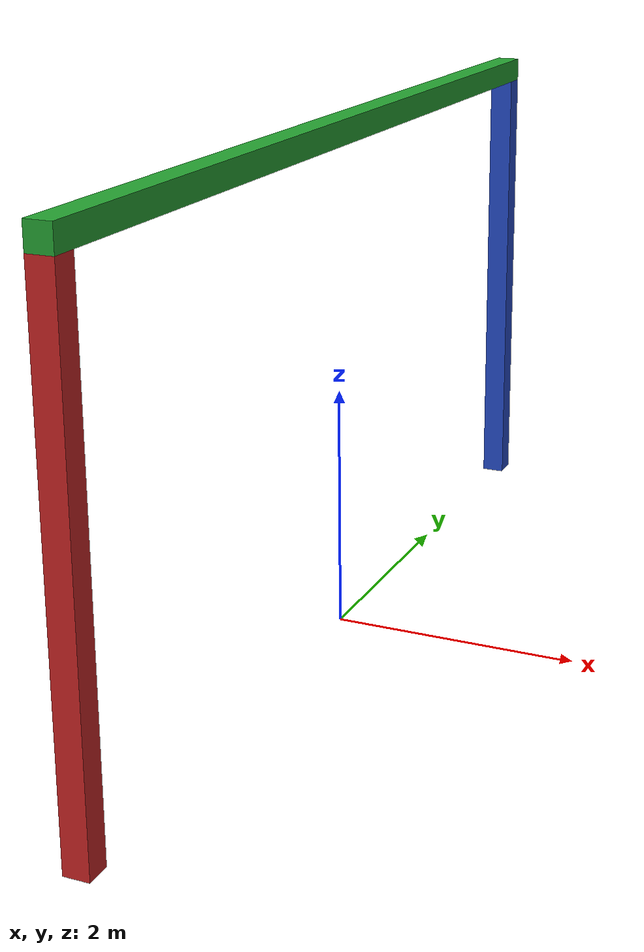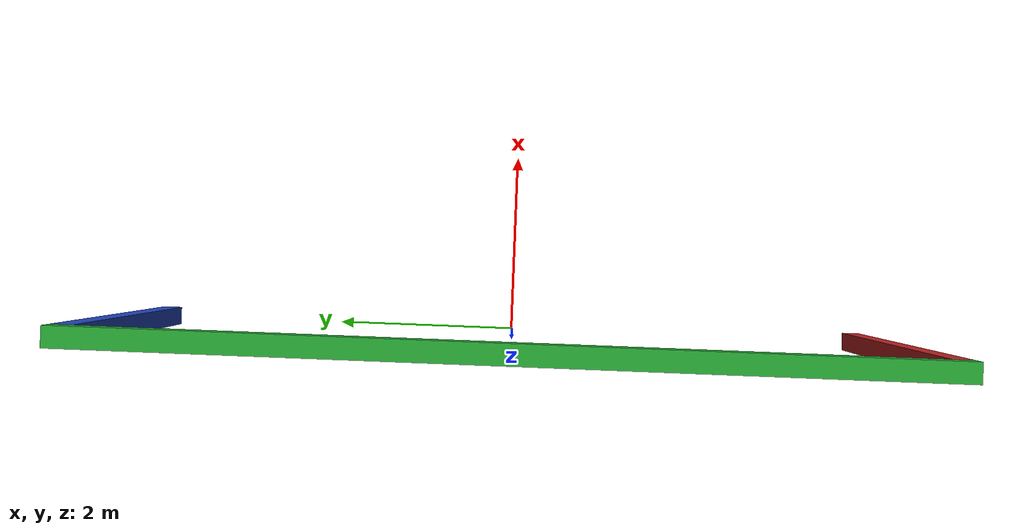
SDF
<?xml version="1.0"?>
<sdf version="1.4">
  <model name="vehicle_gate">
    <static>true</static>
    <pose>0 0 2.0 0 0 0</pose>
    <link name="link">
      <collision name="right_collision">
        <pose>0 -4.0 0 0 0 0</pose>
        <geometry>
          <box>
            <size>0.2 0.2 4.0</size>
          </box>
        </geometry>
      </collision>
      <visual name="right_visual">
        <pose>0 -4.0 0 0 0 0</pose>
        <geometry>
          <box>
            <size>0.2 0.2 4.0</size>
          </box>
        </geometry>
        <material>
          <script>
            <uri>model://gate/materials/scripts/gate.material</uri>
            <uri>model://gate/materials/textures</uri>
            <name>vrc/red_gate</name>
          </script>
        </material>
      </visual>

      <collision name="left_collision">
        <pose>0 4.0 0 0 0 0</pose>
        <geometry>
          <box>
            <size>0.2 0.2 4.0</size>
          </box>
        </geometry>
      </collision>
      <visual name="left_visual">
        <pose>0 4.0 0 0 0 0</pose>
        <geometry>
          <box>
            <size>0.2 0.2 4.0</size>
          </box>
        </geometry>
        <material>
          <script>
            <uri>model://gate/materials/scripts/gate.material</uri>
            <uri>model://gate/materials/textures</uri>
            <name>vrc/blue_gate</name>
          </script>
        </material>
      </visual>

      <collision name="top_collision">
        <pose>0 0 2.1 0 0 0</pose>
        <geometry>
          <box>
            <size>0.2 8.2 0.2</size>
          </box>
        </geometry>
      </collision>
      <visual name="top_visual">
        <pose>0 0 2.1 0 0 0</pose>
        <geometry>
          <box>
            <size>0.2 8.2 0.2</size>
          </box>
        </geometry>
        <material>
          <script>
            <uri>model://gate/materials/scripts/gate.material</uri>
            <uri>model://gate/materials/textures</uri>
            <name>vrc/green_gate</name>
          </script>
        </material>
      </visual>
    </link>
  </model>
</sdf>
